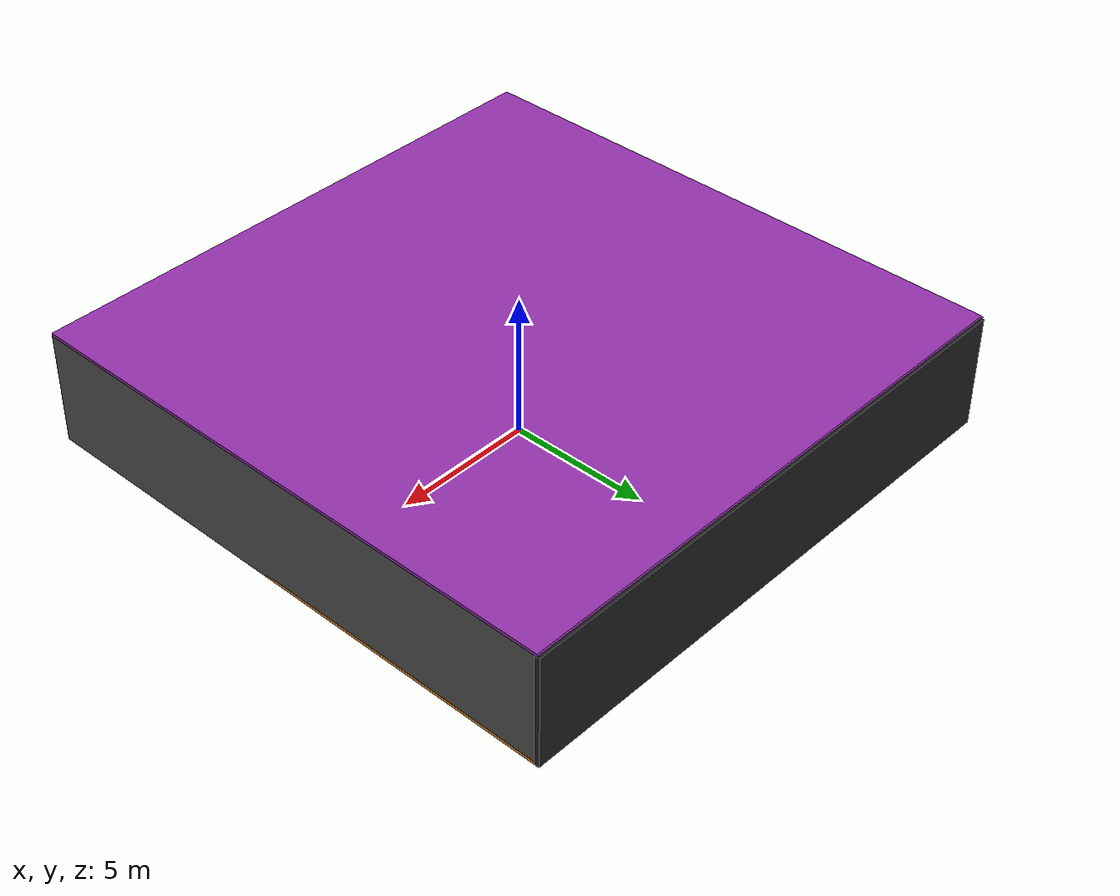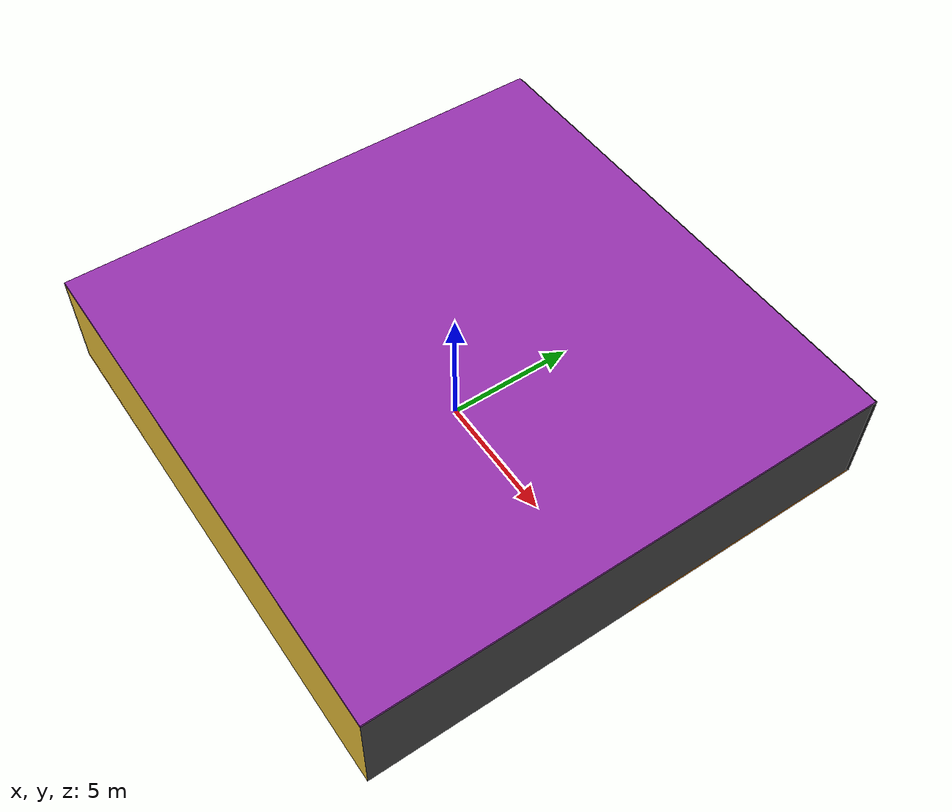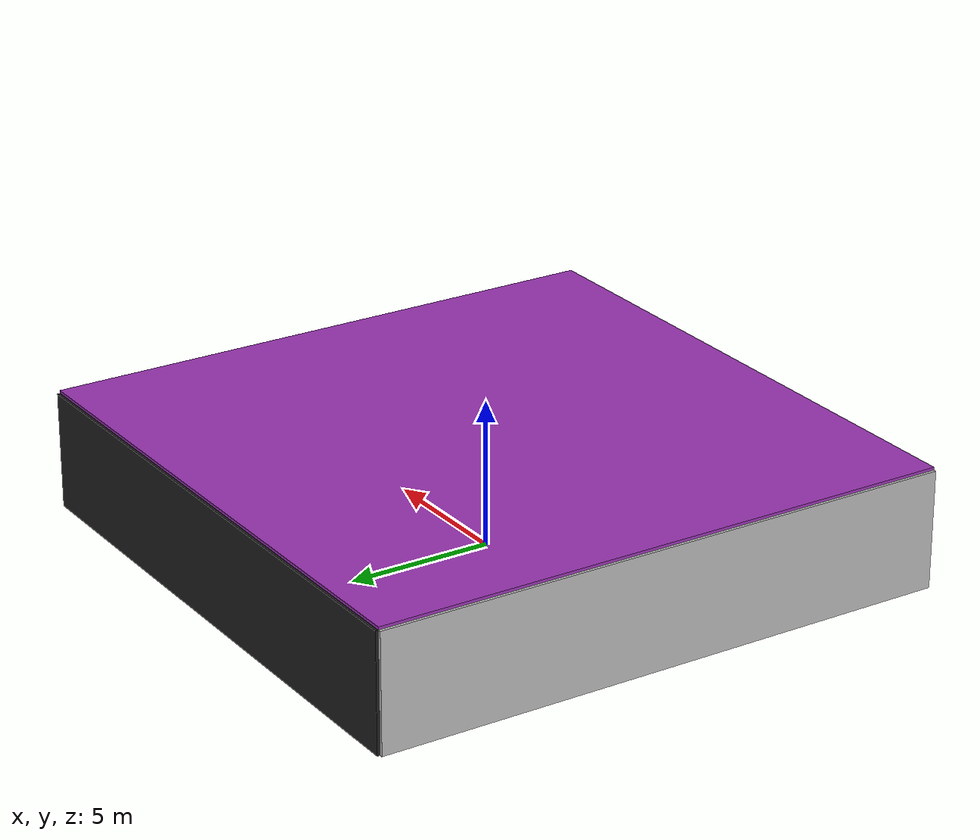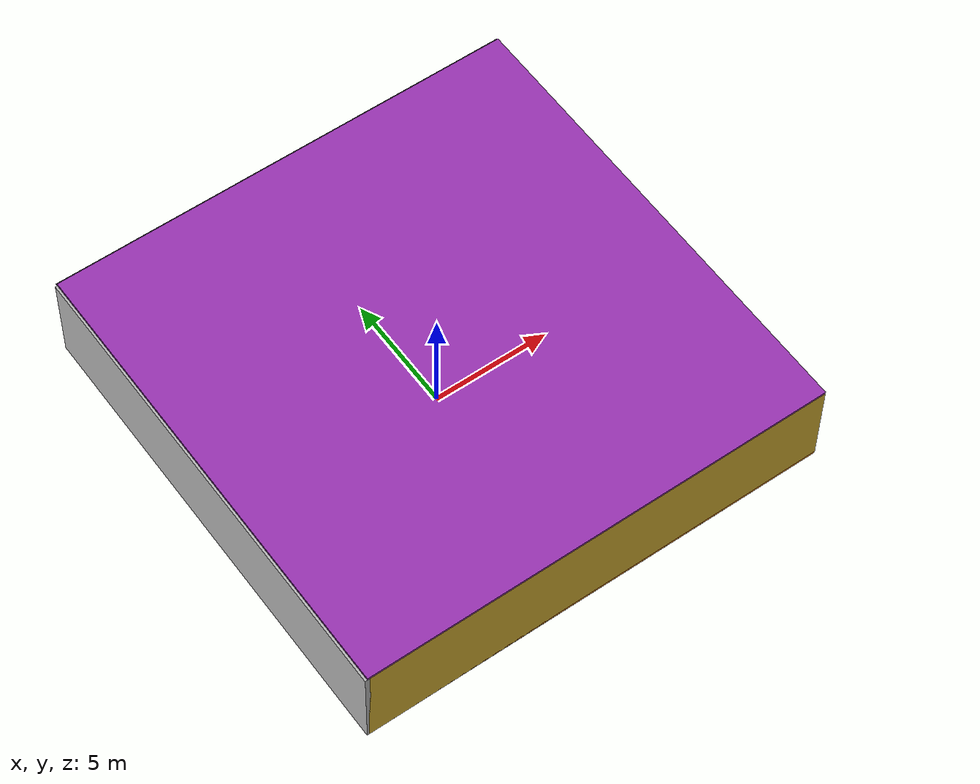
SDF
<sdf version="1.4">
 <world name="default">
  <physics type="ode">
   <max_step_size>0.001</max_step_size>
   <real_time_factor>1</real_time_factor>
   <real_time_update_rate>1000</real_time_update_rate>
   <gravity>0 0 -9.8</gravity>
  </physics>
  <scene><ambient>0.4 0.4 0.4 1</ambient><background>0.7 0.7 0.7 1</background><shadows>1</shadows></scene>
  <model name="Surrounding">
   <static>1</static>
   <link name="Ceiling">
    <collision name="Ceiling_Collision"><geometry><box><size>20 20 0.1</size></box></geometry></collision>
    <visual name="Ceiling_Visual">
     <geometry><box><size>20 20 0.1</size></box></geometry>
     <material>
      <script><uri>file://media/materials/scripts/gazebo.material</uri><name>Gazebo/PurpleGlow</name></script>
     </material>
    </visual>
    <pose>0 0 4.05 0 0 0</pose>
   </link>
   <link name="Wall_South">
    <collision name="Wall_South_Collision">
     <geometry><box><size>20 0 4</size></box></geometry>
     <pose>0 0 2 0 -0 0</pose>
    </collision>
    <visual name="Wall_South_Visual">
     <pose>0 0 2 0 -0 0</pose>
     <geometry><box><size>20 0 4</size></box></geometry>
     <material>
      <script><uri>file://media/materials/scripts/gazebo.material</uri><name>Gazebo/Gold</name></script>
     </material>
    </visual>
    <velocity_decay><linear>0</linear><angular>0</angular></velocity_decay>
    <pose>0 -10 0 0 -0 0</pose>
   </link>
   <link name="Wall_East">
    <collision name="Wall_21_Collision">
     <geometry><box><size>20 0 4</size></box></geometry>
     <pose>0 0 2 0 -0 0</pose>
    </collision>
    <visual name="Wall_21_Visual">
     <pose>0 0 2 0 -0 0</pose>
     <geometry><box><size>20 0 4</size></box></geometry>
     <material>
      <script><uri>file://media/materials/scripts/gazebo.material</uri><name>Gazebo/Road</name></script>
     </material>
    </visual>
    <velocity_decay><linear>0</linear><angular>0</angular></velocity_decay>
    <pose>10 0 0 0 -0 1.5708</pose>
   </link>
   <link name="Wall_North">
    <collision name="Wall_22_Collision">
     <geometry><box><size>20 0.2 4</size></box></geometry>
     <pose>0 0 2 0 -0 0</pose>
    </collision>
    <visual name="Wall_22_Visual">
     <pose>0 0 2 0 -0 0</pose>
     <geometry><box><size>20 0.2 4</size></box></geometry>
     <material>
      <script><uri>file://media/materials/scripts/gazebo.material</uri><name>Gazebo/Black</name></script>
     </material>
    </visual>
    <velocity_decay><linear>0</linear><angular>0</angular></velocity_decay>
    <pose>0 10 0 0 -0 0</pose>
   </link>
   <link name="Wall_West">
    <collision name="Wall_23_Collision">
     <geometry><box><size>20 0.2 4</size></box></geometry>
     <pose>0 0 2 0 -0 0</pose>
    </collision>
    <visual name="Wall_23_Visual">
     <pose>0 0 2 0 -0 0</pose>
     <geometry><box><size>20 0.2 4</size></box></geometry>
     <material>
      <script><uri>file://media/materials/scripts/gazebo.material</uri><name>Gazebo/PioneerBody</name></script>
     </material>
    </visual>
    <velocity_decay><linear>0</linear><angular>0</angular></velocity_decay>
    <pose>-10 0 0 0 0 -1.5708</pose>
   </link>
   <link name="Ground_link">
    <collision name="collision">
     <pose>0 0 .05 0 -0 0</pose>
     <geometry><box><size>20 20 0.1</size></box></geometry>
    </collision>
    <visual name="visual">
     <pose>0 0 .05 0 -0 0</pose>
     <geometry><box><size>20 20 0.1</size></box></geometry>
     <material>
      <script><uri>file://media/materials/scripts/gazebo.material</uri><name>Gazebo/Orange</name></script>
     </material>
    </visual>
   </link>
   <static>1</static>
  </model>
  <spherical_coordinates>
   <surface_model>EARTH_WGS84</surface_model>
   <latitude_deg>0</latitude_deg>
   <longitude_deg>0</longitude_deg>
   <elevation>0</elevation>
   <heading_deg>0</heading_deg>
  </spherical_coordinates>
  <light name="lightball_0" type="diffuse">
   <diffuse>0.8 0.8 0.8 1</diffuse>
   <specular>0.2 0.2 0.2 1</specular>
   <attenuation>
    <range>100</range>
    <constant>0.7</constant>
    <linear>0.01</linear>
    <quadratic>0.001</quadratic>
   </attenuation>
   <direction>-0.5 0.1 -0.9</direction>
   <pose>7.99671837589 1.36180259254 1.45159976902 0 0 0</pose>
  </light>
  <light name="lightball_1" type="diffuse">
   <diffuse>0.8 0.8 0.8 1</diffuse>
   <specular>0.2 0.2 0.2 1</specular>
   <attenuation>
    <range>100</range>
    <constant>0.7</constant>
    <linear>0.01</linear>
    <quadratic>0.001</quadratic>
   </attenuation>
   <direction>-0.5 0.1 -0.9</direction>
   <pose>8.59843631593 -7.99175960599 2.54024089122 0 0 0</pose>
  </light>
  <light name="lightball_2" type="diffuse">
   <diffuse>0.8 0.8 0.8 1</diffuse>
   <specular>0.2 0.2 0.2 1</specular>
   <attenuation>
    <range>100</range>
    <constant>0.7</constant>
    <linear>0.01</linear>
    <quadratic>0.001</quadratic>
   </attenuation>
   <direction>-0.5 0.1 -0.9</direction>
   <pose>7.5818547386 -7.83317521468 2.98867224112 0 0 0</pose>
  </light>
  <light name="lightball_3" type="diffuse">
   <diffuse>0.8 0.8 0.8 1</diffuse>
   <specular>0.2 0.2 0.2 1</specular>
   <attenuation>
    <range>100</range>
    <constant>0.7</constant>
    <linear>0.01</linear>
    <quadratic>0.001</quadratic>
   </attenuation>
   <direction>-0.5 0.1 -0.9</direction>
   <pose>-1.05549963863 -7.68763203275 0.739562354916 0 0 0</pose>
  </light>
  <light name="lightball_4" type="diffuse">
   <diffuse>0.8 0.8 0.8 1</diffuse>
   <specular>0.2 0.2 0.2 1</specular>
   <attenuation>
    <range>100</range>
    <constant>0.7</constant>
    <linear>0.01</linear>
    <quadratic>0.001</quadratic>
   </attenuation>
   <direction>-0.5 0.1 -0.9</direction>
   <pose>-1.21355018227 5.43187826313 3.08174325146 0 0 0</pose>
  </light>
  <light name="lightball_5" type="diffuse">
   <diffuse>0.8 0.8 0.8 1</diffuse>
   <specular>0.2 0.2 0.2 1</specular>
   <attenuation>
    <range>100</range>
    <constant>0.7</constant>
    <linear>0.01</linear>
    <quadratic>0.001</quadratic>
   </attenuation>
   <direction>-0.5 0.1 -0.9</direction>
   <pose>0.727671035564 9.37882905691 2.81267924843 0 0 0</pose>
  </light>
  <light name="lightball_6" type="diffuse">
   <diffuse>0.8 0.8 0.8 1</diffuse>
   <specular>0.2 0.2 0.2 1</specular>
   <attenuation>
    <range>100</range>
    <constant>0.7</constant>
    <linear>0.01</linear>
    <quadratic>0.001</quadratic>
   </attenuation>
   <direction>-0.5 0.1 -0.9</direction>
   <pose>0.419752196832 3.07672252434 1.31435880272 0 0 0</pose>
  </light>
  <light name="lightball_7" type="diffuse">
   <diffuse>0.8 0.8 0.8 1</diffuse>
   <specular>0.2 0.2 0.2 1</specular>
   <attenuation>
    <range>100</range>
    <constant>0.7</constant>
    <linear>0.01</linear>
    <quadratic>0.001</quadratic>
   </attenuation>
   <direction>-0.5 0.1 -0.9</direction>
   <pose>-3.63671660709 7.19596104662 1.5837354811 0 0 0</pose>
  </light>
  <include><uri>model://cabinet</uri><pose>-4.11767651105 -7.43951176946 0 0 0 0.815587849385</pose></include>
  <include><uri>model://cabinet</uri><pose>8.22777219984 -7.04426052475 0 0 0 1.62739307495</pose></include>
 </world>
</sdf>

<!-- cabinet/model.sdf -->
<sdf version="1.5">
  <model name="cabinet">
    <static>true</static>
    <link name="cabinet_bottom_plate">
      <inertial>
        <pose>0 0 -1 0 0 0</pose>
        <inertia>
          <ixx>2.050000</ixx>
          <ixy>0</ixy>
          <ixz>0</ixz>
          <iyy>2.050000</iyy>
          <iyz>0</iyz>
          <izz>2.050000</izz>
        </inertia>
        <mass>25.000000</mass>
      </inertial>
      <collision name="cabinet_bottom_plate_geom">
        <pose>0 0 0.010000 0 0 0</pose>
        <geometry>
          <box>
            <size>0.450000 0.450000 0.020000</size>
          </box>
        </geometry>
      </collision>
      <visual name="cabinet_bottom_plate_geom_visual">
        <pose>0 0 0.010000 0 0 0</pose>
        <geometry>
          <box>
            <size>0.450000 0.450000 0.020000</size>
          </box>
        </geometry>
        <material>
          <script>
            <uri>model://media/materials/scripts/gazebo.material</uri>
            <name>Gazebo/Wood</name>
          </script>
        </material>
      </visual>
      <collision name="cabinet_bottom_plate_geom_cabinet_back_plate">
        <pose>0.235000 0 0.510000 0 0 0</pose>
        <geometry>
          <box>
            <size>0.020000 0.450000 1.020000</size>
          </box>
        </geometry>
      </collision>
      <visual name="cabinet_bottom_plate_geom_cabinet_back_plate_visual">
        <pose>0.235000 0 0.510000 0 0 0</pose>
        <geometry>
          <box>
            <size>0.020000 0.450000 1.020000</size>
          </box>
        </geometry>
        <material>
          <script>
            <uri>model://media/materials/scripts/gazebo.material</uri>
            <name>Gazebo/Wood</name>
          </script>
        </material>
      </visual>
      <collision name="cabinet_bottom_plate_geom_cabinet_left_plate">
        <pose>0 0.235000 0.510000 0 0 0</pose>
        <geometry>
          <box>
            <size>0.450000 0.020000 1.020000</size>
          </box>
        </geometry>
      </collision>
      <visual name="cabinet_bottom_plate_geom_cabinet_left_plate_visual">
        <pose>0 0.235000 0.510000 0 0 0</pose>
        <geometry>
          <box>
            <size>0.450000 0.020000 1.020000</size>
          </box>
        </geometry>
        <material>
          <script>
            <uri>model://media/materials/scripts/gazebo.material</uri>
            <name>Gazebo/Wood</name>
          </script>
        </material>
      </visual>
      <collision name="cabinet_bottom_plate_geom_cabinet_middle_plate">
        <pose>0 0 0.510000 0 0 0</pose>
        <geometry>
          <box>
            <size>0.450000 0.450000 0.020000</size>
          </box>
        </geometry>
      </collision>
      <visual name="cabinet_bottom_plate_geom_cabinet_middle_plate_visual">
        <pose>0 0 0.510000 0 0 0</pose>
        <geometry>
          <box>
            <size>0.450000 0.450000 0.020000</size>
          </box>
        </geometry>
        <material>
          <script>
            <uri>model://media/materials/scripts/gazebo.material</uri>
            <name>Gazebo/Wood</name>
          </script>
        </material>
      </visual>
      <collision name="cabinet_bottom_plate_geom_cabinet_right_plate">
        <pose>0 -0.235000 0.510000 0 0 0</pose>
        <geometry>
          <box>
            <size>0.450000 0.020000 1.020000</size>
          </box>
        </geometry>
      </collision>
      <visual name="cabinet_bottom_plate_geom_cabinet_right_plate_visual">
        <pose>0 -0.235000 0.510000 0 0 0</pose>
        <geometry>
          <box>
            <size>0.450000 0.020000 1.020000</size>
          </box>
        </geometry>
        <material>
          <script>
            <uri>model://media/materials/scripts/gazebo.material</uri>
            <name>Gazebo/Wood</name>
          </script>
        </material>
      </visual>
      <collision name="cabinet_bottom_plate_geom_cabinet_top_plate">
        <pose>0 0 1.010000 0 0 0</pose>
        <geometry>
          <box>
            <size>0.450000 0.450000 0.020000</size>
          </box>
        </geometry>
      </collision>
      <visual name="cabinet_bottom_plate_geom_cabinet_top_plate_visual">
        <pose>0 0 1.010000 0 0 0</pose>
        <geometry>
          <box>
            <size>0.450000 0.450000 0.020000</size>
          </box>
        </geometry>
        <material>
          <script>
            <uri>model://media/materials/scripts/gazebo.material</uri>
            <name>Gazebo/Wood</name>
          </script>
        </material>
      </visual>
    </link>
  </model>
</sdf>
